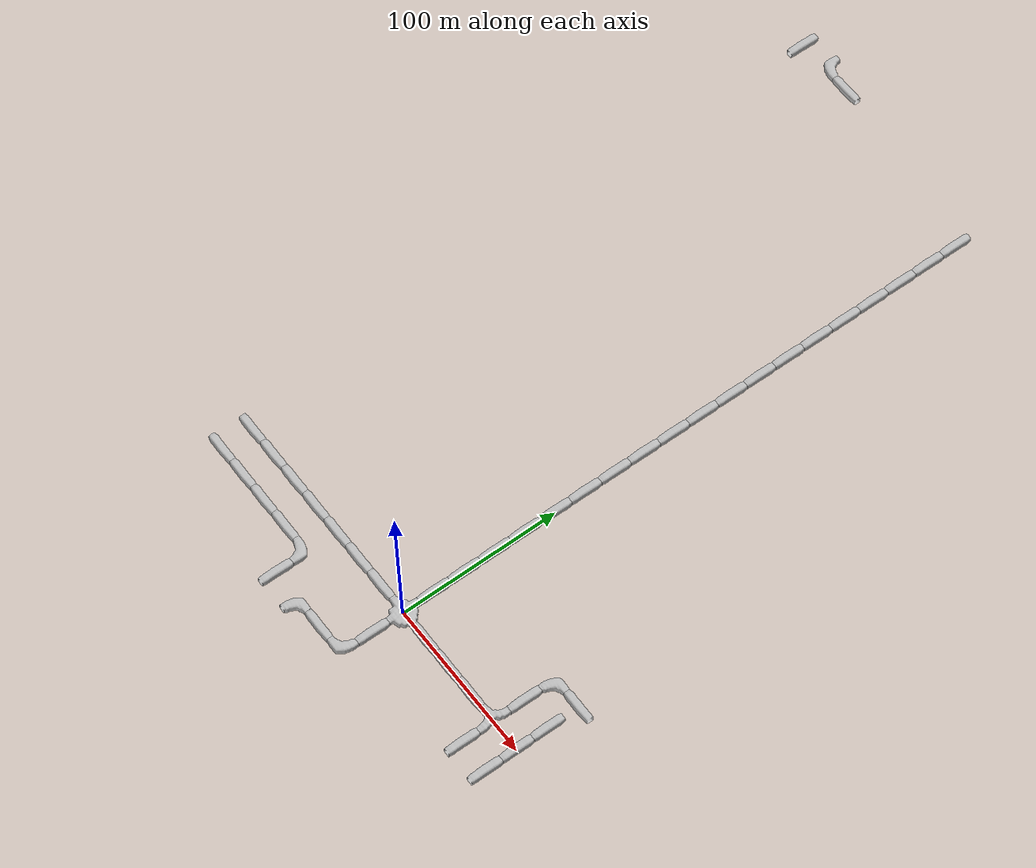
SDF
<sdf version="1.6">
 <world name="cave_16000_0">
  <include>
   <static>true</static>
   <name>cave_0_0</name>
   <pose>0 0 0 0 0 -1.5707963267948966</pose>
   <uri>model://cave_4way_20m</uri>
  </include>
  <include>
   <static>true</static>
   <name>cave_1_0</name>
   <pose>20 0 0 0 0 1.5707963267948966</pose>
   <uri>model://cave_straight_20m</uri>
  </include>
  <include>
   <static>true</static>
   <name>cave_2_0</name>
   <pose>40 0 0 0 0 1.5707963267948966</pose>
   <uri>model://cave_straight_20m</uri>
  </include>
  <include>
   <static>true</static>
   <name>cave_3_0</name>
   <pose>60 0 0 0 0 1.5707963267948966</pose>
   <uri>model://cave_straight_20m</uri>
  </include>
  <include>
   <static>true</static>
   <name>cave_4_0</name>
   <pose>80 0 0 0 0 1.5707963267948966</pose>
   <uri>model://cave_3way_20m</uri>
  </include>
  <include>
   <static>true</static>
   <name>cave_4_-1</name>
   <pose>80 -20 0 0 0 0.0</pose>
   <uri>model://cave_straight_20m</uri>
  </include>
  <include>
   <static>true</static>
   <name>cave_5_-1</name>
   <pose>100 -20 0 0 0 0.0</pose>
   <uri>model://cave_straight_20m</uri>
  </include>
  <include>
   <static>true</static>
   <name>cave_5_0</name>
   <pose>100 0 0 0 0 0.0</pose>
   <uri>model://cave_straight_20m</uri>
  </include>
  <include>
   <static>true</static>
   <name>cave_5_1</name>
   <pose>100 20 0 0 0 0.0</pose>
   <uri>model://cave_straight_20m</uri>
  </include>
  <include>
   <static>true</static>
   <name>cave_4_1</name>
   <pose>80 20 0 0 0 0.0</pose>
   <uri>model://cave_straight_20m</uri>
  </include>
  <include>
   <static>true</static>
   <name>cave_4_2</name>
   <pose>80 40 0 0 0 -1.5707963267948966</pose>
   <uri>model://cave_L_20m</uri>
  </include>
  <include>
   <static>true</static>
   <name>cave_5_2</name>
   <pose>100 40 0 0 0 1.5707963267948966</pose>
   <uri>model://cave_straight_20m</uri>
  </include>
  <include>
   <static>true</static>
   <name>cave_0_-1</name>
   <pose>0 -20 0 0 0 0.0</pose>
   <uri>model://cave_straight_20m</uri>
  </include>
  <include>
   <static>true</static>
   <name>cave_0_-2</name>
   <pose>0 -40 0 0 0 1.5707963267948966</pose>
   <uri>model://cave_L_20m</uri>
  </include>
  <include>
   <static>true</static>
   <name>cave_-1_-2</name>
   <pose>-20 -40 0 0 0 1.5707963267948966</pose>
   <uri>model://cave_straight_20m</uri>
  </include>
  <include>
   <static>true</static>
   <name>cave_-2_-2</name>
   <pose>-40 -40 0 0 0 -1.5707963267948966</pose>
   <uri>model://cave_L_20m</uri>
  </include>
  <include>
   <static>true</static>
   <name>cave_-3_-2</name>
   <pose>-60 -40 0 0 0 0.0</pose>
   <uri>model://cave_straight_20m</uri>
  </include>
  <include>
   <static>true</static>
   <name>cave_-3_-1</name>
   <pose>-60 -20 0 0 0 3.141592653589793</pose>
   <uri>model://cave_L_20m</uri>
  </include>
  <include>
   <static>true</static>
   <name>cave_-4_-1</name>
   <pose>-80 -20 0 0 0 1.5707963267948966</pose>
   <uri>model://cave_straight_20m</uri>
  </include>
  <include>
   <static>true</static>
   <name>cave_-5_-1</name>
   <pose>-100 -20 0 0 0 1.5707963267948966</pose>
   <uri>model://cave_straight_20m</uri>
  </include>
  <include>
   <static>true</static>
   <name>cave_-6_-1</name>
   <pose>-120 -20 0 0 0 1.5707963267948966</pose>
   <uri>model://cave_straight_20m</uri>
  </include>
  <include>
   <static>true</static>
   <name>cave_-7_-1</name>
   <pose>-140 -20 0 0 0 1.5707963267948966</pose>
   <uri>model://cave_straight_20m</uri>
  </include>
  <include>
   <static>true</static>
   <name>cave_-1_0</name>
   <pose>-20 0 0 0 0 1.5707963267948966</pose>
   <uri>model://cave_straight_20m</uri>
  </include>
  <include>
   <static>true</static>
   <name>cave_-2_0</name>
   <pose>-40 0 0 0 0 1.5707963267948966</pose>
   <uri>model://cave_straight_20m</uri>
  </include>
  <include>
   <static>true</static>
   <name>cave_-3_0</name>
   <pose>-60 0 0 0 0 1.5707963267948966</pose>
   <uri>model://cave_straight_20m</uri>
  </include>
  <include>
   <static>true</static>
   <name>cave_-4_0</name>
   <pose>-80 0 0 0 0 1.5707963267948966</pose>
   <uri>model://cave_straight_20m</uri>
  </include>
  <include>
   <static>true</static>
   <name>cave_-5_0</name>
   <pose>-100 0 0 0 0 1.5707963267948966</pose>
   <uri>model://cave_straight_20m</uri>
  </include>
  <include>
   <static>true</static>
   <name>cave_-6_0</name>
   <pose>-120 0 0 0 0 1.5707963267948966</pose>
   <uri>model://cave_straight_20m</uri>
  </include>
  <include>
   <static>true</static>
   <name>cave_-7_0</name>
   <pose>-140 0 0 0 0 1.5707963267948966</pose>
   <uri>model://cave_straight_20m</uri>
  </include>
  <include>
   <static>true</static>
   <name>cave_-8_20</name>
   <pose>-160 400 0 0 0 0.0</pose>
   <uri>model://cave_straight_20m</uri>
  </include>
  <include>
   <static>true</static>
   <name>cave_-7_20</name>
   <pose>-140 400 0 0 0 0.0</pose>
   <uri>model://cave_L_20m</uri>
  </include>
  <include>
   <static>true</static>
   <name>cave_-6_20</name>
   <pose>-120 400 0 0 0 1.5707963267948966</pose>
   <uri>model://cave_straight_20m</uri>
  </include>
  <include>
   <static>true</static>
   <name>cave_0_1</name>
   <pose>0 20 0 0 0 0.0</pose>
   <uri>model://cave_straight_20m</uri>
  </include>
  <include>
   <static>true</static>
   <name>cave_0_2</name>
   <pose>0 40 0 0 0 0.0</pose>
   <uri>model://cave_straight_20m</uri>
  </include>
  <include>
   <static>true</static>
   <name>cave_0_3</name>
   <pose>0 60 0 0 0 0.0</pose>
   <uri>model://cave_straight_20m</uri>
  </include>
  <include>
   <static>true</static>
   <name>cave_0_4</name>
   <pose>0 80 0 0 0 0.0</pose>
   <uri>model://cave_straight_20m</uri>
  </include>
  <include>
   <static>true</static>
   <name>cave_0_5</name>
   <pose>0 100 0 0 0 0.0</pose>
   <uri>model://cave_straight_20m</uri>
  </include>
  <include>
   <static>true</static>
   <name>cave_0_6</name>
   <pose>0 120 0 0 0 0.0</pose>
   <uri>model://cave_straight_20m</uri>
  </include>
  <include>
   <static>true</static>
   <name>cave_0_7</name>
   <pose>0 140 0 0 0 0.0</pose>
   <uri>model://cave_straight_20m</uri>
  </include>
  <include>
   <static>true</static>
   <name>cave_0_8</name>
   <pose>0 160 0 0 0 0.0</pose>
   <uri>model://cave_straight_20m</uri>
  </include>
  <include>
   <static>true</static>
   <name>cave_0_9</name>
   <pose>0 180 0 0 0 0.0</pose>
   <uri>model://cave_straight_20m</uri>
  </include>
  <include>
   <static>true</static>
   <name>cave_0_10</name>
   <pose>0 200 0 0 0 0.0</pose>
   <uri>model://cave_straight_20m</uri>
  </include>
  <include>
   <static>true</static>
   <name>cave_0_11</name>
   <pose>0 220 0 0 0 0.0</pose>
   <uri>model://cave_straight_20m</uri>
  </include>
  <include>
   <static>true</static>
   <name>cave_0_12</name>
   <pose>0 240 0 0 0 0.0</pose>
   <uri>model://cave_straight_20m</uri>
  </include>
  <include>
   <static>true</static>
   <name>cave_0_13</name>
   <pose>0 260 0 0 0 0.0</pose>
   <uri>model://cave_straight_20m</uri>
  </include>
  <include>
   <static>true</static>
   <name>cave_0_14</name>
   <pose>0 280 0 0 0 0.0</pose>
   <uri>model://cave_straight_20m</uri>
  </include>
  <include>
   <static>true</static>
   <name>cave_0_15</name>
   <pose>0 300 0 0 0 0.0</pose>
   <uri>model://cave_straight_20m</uri>
  </include>
  <include>
   <static>true</static>
   <name>cave_0_16</name>
   <pose>0 320 0 0 0 0.0</pose>
   <uri>model://cave_straight_20m</uri>
  </include>
  <include>
   <static>true</static>
   <name>cave_0_17</name>
   <pose>0 340 0 0 0 0.0</pose>
   <uri>model://cave_straight_20m</uri>
  </include>
  <include>
   <static>true</static>
   <name>cave_0_18</name>
   <pose>0 360 0 0 0 0.0</pose>
   <uri>model://cave_straight_20m</uri>
  </include>
  <include>
   <static>true</static>
   <name>cave_0_19</name>
   <pose>0 380 0 0 0 0.0</pose>
   <uri>model://cave_straight_20m</uri>
  </include>
 </world>
</sdf>
